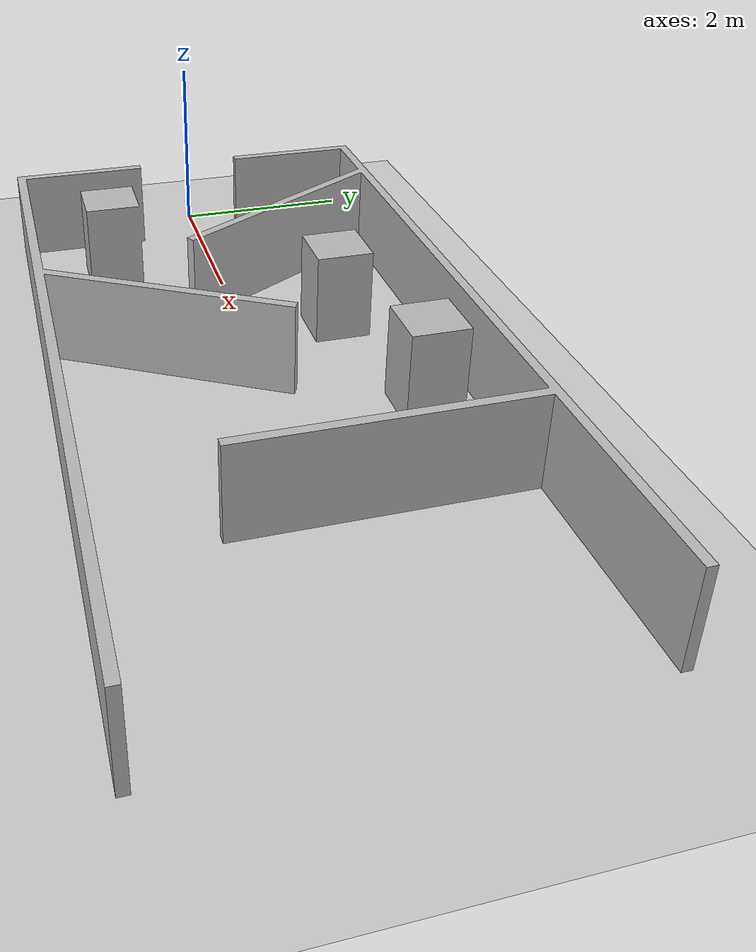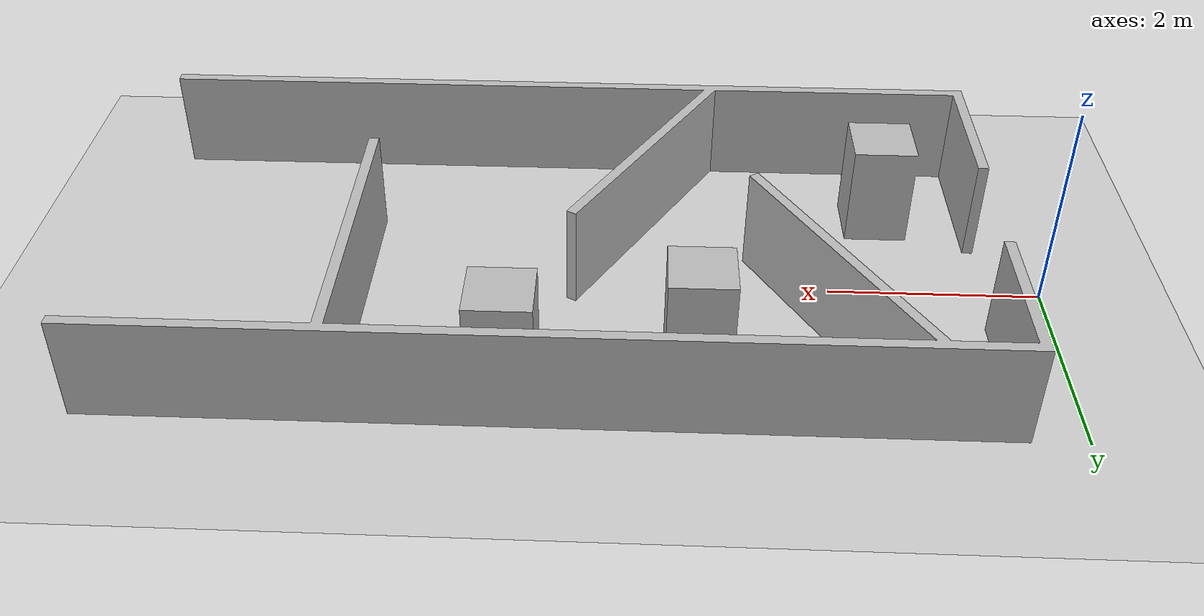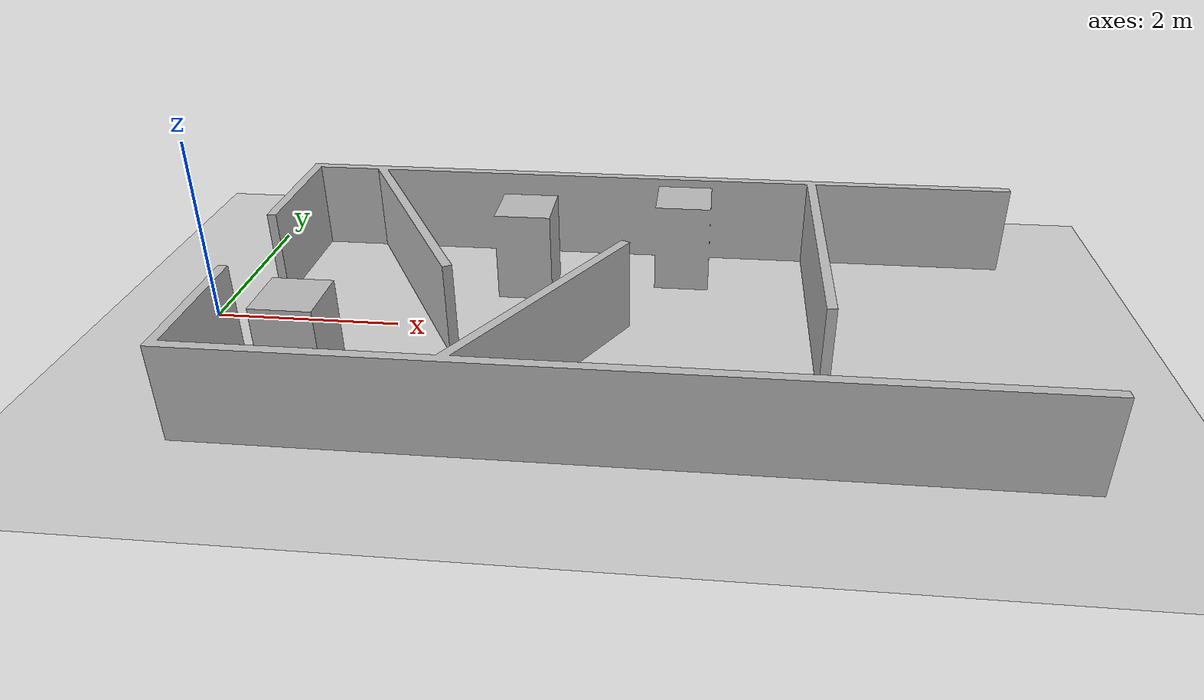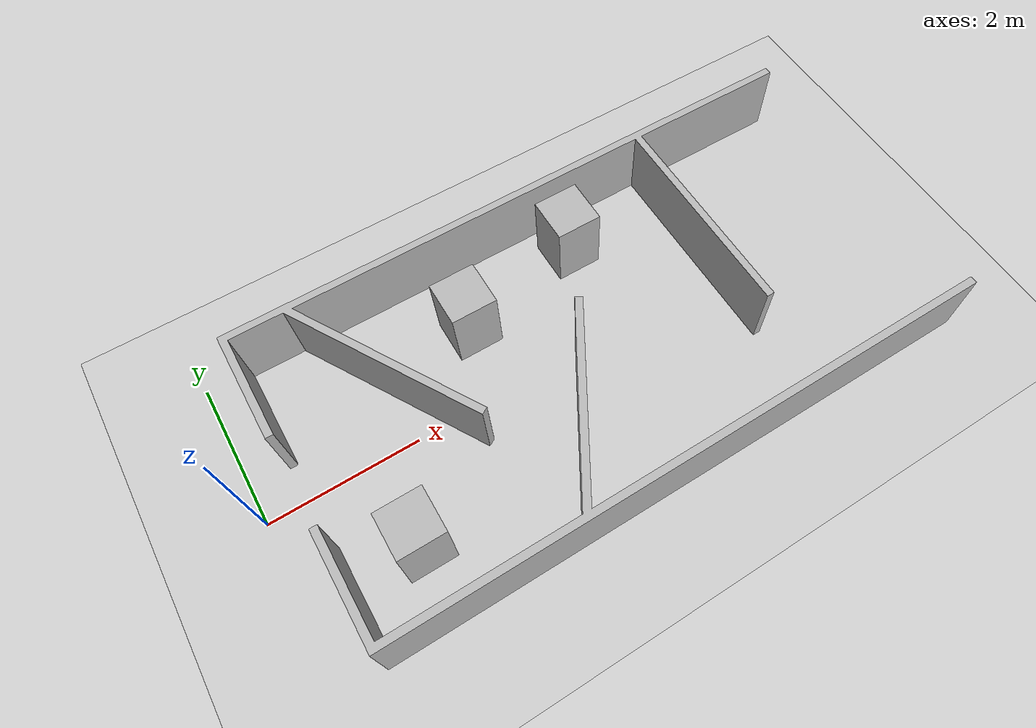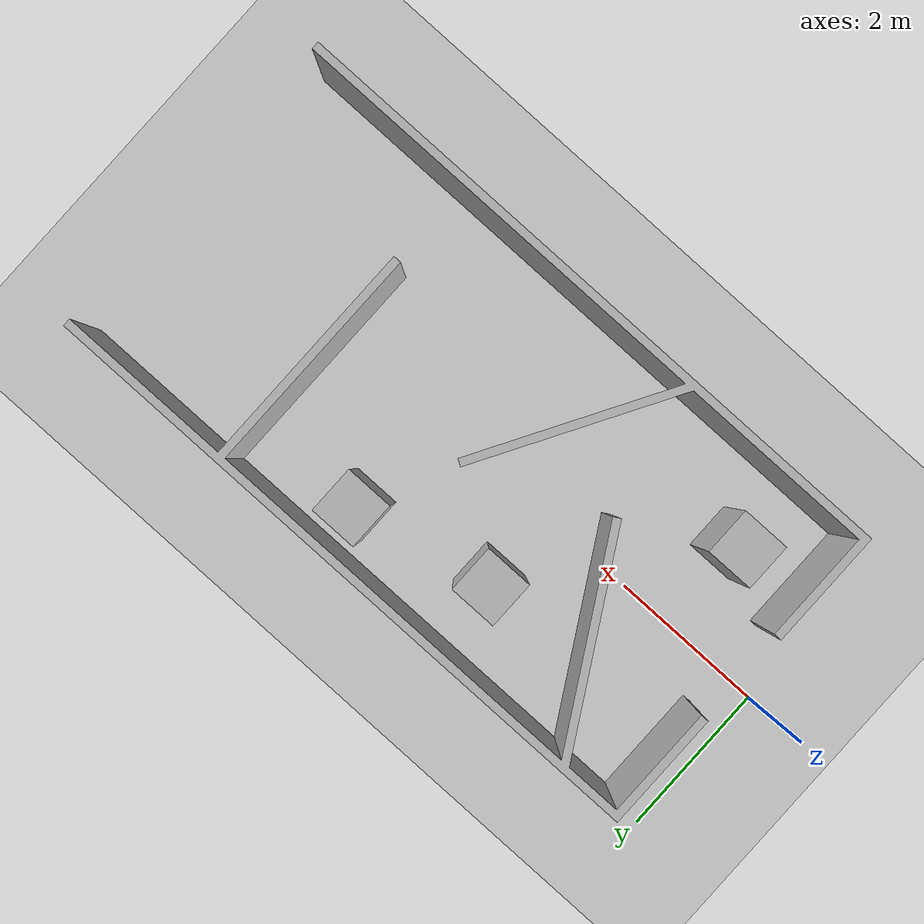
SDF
<?xml version="1.0" ?>
<sdf version="1.8">
  <world name="project3_world">
    <plugin filename="gz-sim-physics-system" name="gz::sim::systems::Physics"/>
    <plugin filename="gz-sim-user-commands-system" name="gz::sim::systems::UserCommands"/>
    <plugin filename="gz-sim-scene-broadcaster-system" name="gz::sim::systems::SceneBroadcaster"/>
    <plugin filename="gz-sim-sensors-system" name="gz::sim::systems::Sensors">
      <render_engine>ogre2</render_engine>
    </plugin>
    <plugin filename="gz-sim-imu-system" name="gz::sim::systems::Imu"/>

    <include>
      <uri>https://fuel.gazebosim.org/1.0/OpenRobotics/models/Ground Plane</uri>
    </include>

    <include>
      <uri>https://fuel.gazebosim.org/1.0/OpenRobotics/models/Sun</uri>
    </include>

    <include>
      <uri>model://project3</uri>
      <pose>0.5 2.0 0 0 0 -1.57</pose>
    </include>
  </world>
</sdf>

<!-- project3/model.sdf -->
<sdf version="1.6">
    <model name="project3">
        <static>true</static>
        <link name="link">
            <pose>0 0 0 0 0 0</pose>
            <visual name="visual">
                <geometry>
                    <mesh>
                        <uri>model://project3/meshes/map-project3-phase2.STL</uri>
                        <scale>0.002 0.002 0.002</scale>
                    </mesh>
                </geometry>
            </visual>
            <collision name="collision">
                <geometry>
                    <mesh>
                        <uri>model://project3/meshes/map-project3-phase2.STL</uri>
                        <scale>0.002 0.002 0.002</scale>
                    </mesh>
                </geometry>
            </collision>
            <inertial>
                <mass>1.0</mass>
                <inertia>
                    <ixx>0.01</ixx>
                    <iyy>0.01</iyy>
                    <izz>0.01</izz>
                    <ixy>0.0</ixy>
                    <ixz>0.0</ixz>
                    <iyz>0.0</iyz>
                </inertia>
            </inertial>
        </link>
    </model>
</sdf>
